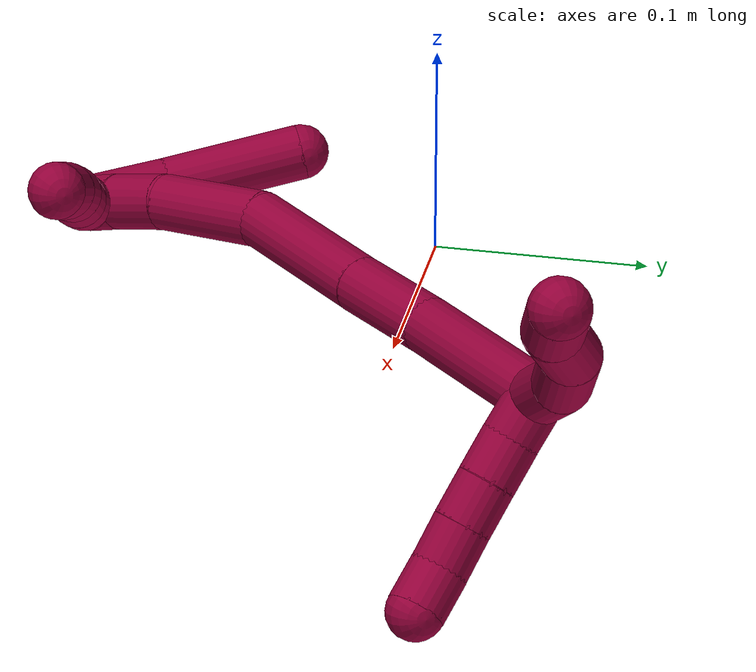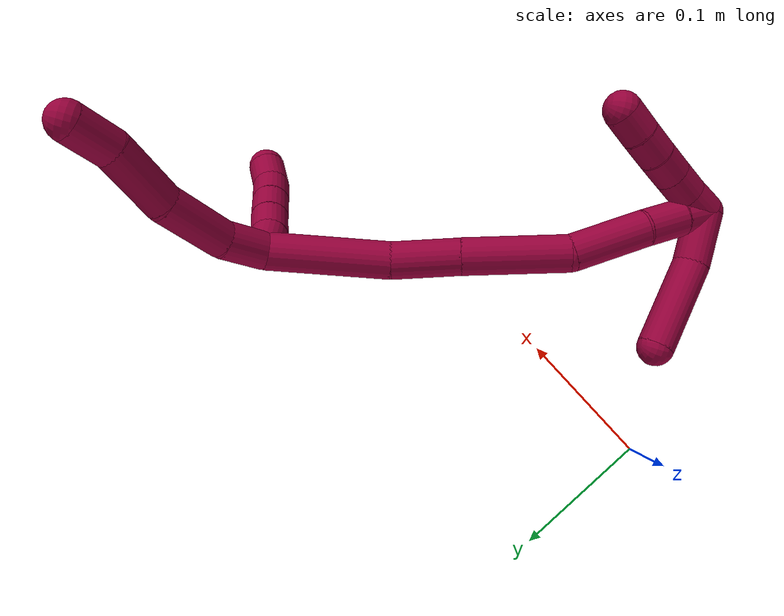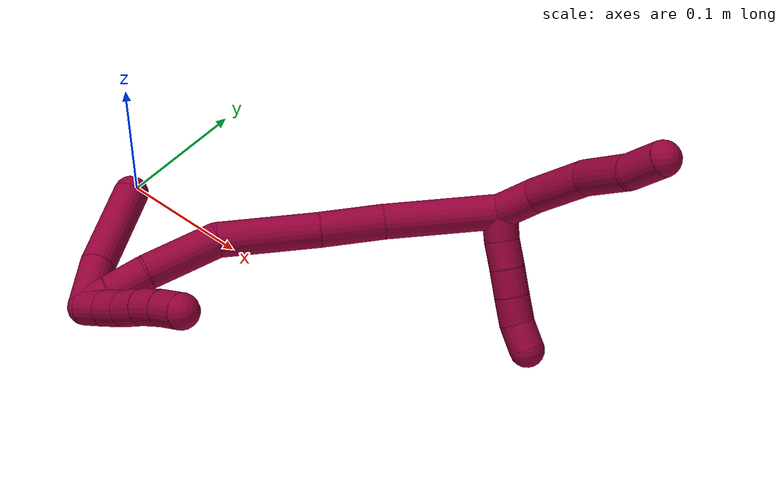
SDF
<sdf version="1.7">
 <world name="default">
  <model name="8">
   <static>0</static>
   <link name="8">
    <collision name="collision-cylinder-e_1_2_8">
     <pose>-0.003268 -0.005428 0.013873 0.372925 -0.215933 -0.04089</pose>
     <geometry><cylinder><radius>0.0125</radius><length>0.030503</length></cylinder></geometry>
     <surface>
      <friction><ode><mu>1.16</mu><mu2>1.16</mu2><slip1>0</slip1><slip2>0</slip2></ode></friction>
      <contact><ode><kp>1e+06</kp><kd>1</kd><max_vel>0</max_vel><min_depth>0.001</min_depth></ode></contact>
     </surface>
    </collision>
    <visual name="visual-cylinder-e_1_2_8">
     <pose>-0.003268 -0.005428 0.013873 0.372925 -0.215933 -0.04089</pose>
     <geometry><cylinder><radius>0.0125</radius><length>0.030503</length></cylinder></geometry>
     <material><ambient>0.584314 0 0.227451 1</ambient></material>
    </visual>
    <collision name="collision-cylinder-e_2_8_9">
     <pose>-0.007399 -0.023596 0.046958 0.585595 -0.03745 -0.011291</pose>
     <geometry><cylinder><radius>0.0125</radius><length>0.046137</length></cylinder></geometry>
     <surface>
      <friction><ode><mu>1.16</mu><mu2>1.16</mu2><slip1>0</slip1><slip2>0</slip2></ode></friction>
      <contact><ode><kp>1e+06</kp><kd>1</kd><max_vel>0</max_vel><min_depth>0.001</min_depth></ode></contact>
     </surface>
    </collision>
    <visual name="visual-cylinder-e_2_8_9">
     <pose>-0.007399 -0.023596 0.046958 0.585595 -0.03745 -0.011291</pose>
     <geometry><cylinder><radius>0.0125</radius><length>0.046137</length></cylinder></geometry>
     <material><ambient>0.584314 0 0.227451 1</ambient></material>
    </visual>
    <collision name="collision-cylinder-e_3_9_10">
     <pose>-0.00454 -0.050497 0.082648 0.709877 0.169699 0.063027</pose>
     <geometry><cylinder><radius>0.0125</radius><length>0.044087</length></cylinder></geometry>
     <surface>
      <friction><ode><mu>1.16</mu><mu2>1.16</mu2><slip1>0</slip1><slip2>0</slip2></ode></friction>
      <contact><ode><kp>1e+06</kp><kd>1</kd><max_vel>0</max_vel><min_depth>0.001</min_depth></ode></contact>
     </surface>
    </collision>
    <visual name="visual-cylinder-e_3_9_10">
     <pose>-0.00454 -0.050497 0.082648 0.709877 0.169699 0.063027</pose>
     <geometry><cylinder><radius>0.0125</radius><length>0.044087</length></cylinder></geometry>
     <material><ambient>0.584314 0 0.227451 1</ambient></material>
    </visual>
    <collision name="collision-cylinder-e_4_10_6">
     <pose>-0.001769 -0.07292 0.11117 0.601318 -0.065044 -0.020174</pose>
     <geometry><cylinder><radius>0.0125</radius><length>0.029274</length></cylinder></geometry>
     <surface>
      <friction><ode><mu>1.16</mu><mu2>1.16</mu2><slip1>0</slip1><slip2>0</slip2></ode></friction>
      <contact><ode><kp>1e+06</kp><kd>1</kd><max_vel>0</max_vel><min_depth>0.001</min_depth></ode></contact>
     </surface>
    </collision>
    <visual name="visual-cylinder-e_4_10_6">
     <pose>-0.001769 -0.07292 0.11117 0.601318 -0.065044 -0.020174</pose>
     <geometry><cylinder><radius>0.0125</radius><length>0.029274</length></cylinder></geometry>
     <material><ambient>0.584314 0 0.227451 1</ambient></material>
    </visual>
    <collision name="collision-cylinder-e_1_2_11">
     <pose>0.00905 0.004234 -0.000409 -1.66716 1.13141 -1.22046</pose>
     <geometry><cylinder><radius>0.0125</radius><length>0.02</length></cylinder></geometry>
     <surface>
      <friction><ode><mu>1.16</mu><mu2>1.16</mu2><slip1>0</slip1><slip2>0</slip2></ode></friction>
      <contact><ode><kp>1e+06</kp><kd>1</kd><max_vel>0</max_vel><min_depth>0.001</min_depth></ode></contact>
     </surface>
    </collision>
    <visual name="visual-cylinder-e_1_2_11">
     <pose>0.00905 0.004234 -0.000409 -1.66716 1.13141 -1.22046</pose>
     <geometry><cylinder><radius>0.0125</radius><length>0.02</length></cylinder></geometry>
     <material><ambient>0.584314 0 0.227451 1</ambient></material>
    </visual>
    <collision name="collision-cylinder-e_2_11_12">
     <pose>0.027305 0.012239 0.000213 -1.30365 1.16916 -0.935222</pose>
     <geometry><cylinder><radius>0.0125</radius><length>0.02</length></cylinder></geometry>
     <surface>
      <friction><ode><mu>1.16</mu><mu2>1.16</mu2><slip1>0</slip1><slip2>0</slip2></ode></friction>
      <contact><ode><kp>1e+06</kp><kd>1</kd><max_vel>0</max_vel><min_depth>0.001</min_depth></ode></contact>
     </surface>
    </collision>
    <visual name="visual-cylinder-e_2_11_12">
     <pose>0.027305 0.012239 0.000213 -1.30365 1.16916 -0.935222</pose>
     <geometry><cylinder><radius>0.0125</radius><length>0.02</length></cylinder></geometry>
     <material><ambient>0.584314 0 0.227451 1</ambient></material>
    </visual>
    <collision name="collision-cylinder-e_3_12_13">
     <pose>0.04564 0.020017 0.001987 -1.38774 1.15098 -0.989746</pose>
     <geometry><cylinder><radius>0.0125</radius><length>0.02</length></cylinder></geometry>
     <surface>
      <friction><ode><mu>1.16</mu><mu2>1.16</mu2><slip1>0</slip1><slip2>0</slip2></ode></friction>
      <contact><ode><kp>1e+06</kp><kd>1</kd><max_vel>0</max_vel><min_depth>0.001</min_depth></ode></contact>
     </surface>
    </collision>
    <visual name="visual-cylinder-e_3_12_13">
     <pose>0.04564 0.020017 0.001987 -1.38774 1.15098 -0.989746</pose>
     <geometry><cylinder><radius>0.0125</radius><length>0.02</length></cylinder></geometry>
     <material><ambient>0.584314 0 0.227451 1</ambient></material>
    </visual>
    <collision name="collision-cylinder-e_4_13_14">
     <pose>0.063793 0.028258 0.003568 -1.37518 1.12461 -0.955179</pose>
     <geometry><cylinder><radius>0.0125</radius><length>0.02</length></cylinder></geometry>
     <surface>
      <friction><ode><mu>1.16</mu><mu2>1.16</mu2><slip1>0</slip1><slip2>0</slip2></ode></friction>
      <contact><ode><kp>1e+06</kp><kd>1</kd><max_vel>0</max_vel><min_depth>0.001</min_depth></ode></contact>
     </surface>
    </collision>
    <visual name="visual-cylinder-e_4_13_14">
     <pose>0.063793 0.028258 0.003568 -1.37518 1.12461 -0.955179</pose>
     <geometry><cylinder><radius>0.0125</radius><length>0.02</length></cylinder></geometry>
     <material><ambient>0.584314 0 0.227451 1</ambient></material>
    </visual>
    <collision name="collision-cylinder-e_5_14_5">
     <pose>0.081982 0.035257 0.007287 -0.765258 1.15994 -0.515594</pose>
     <geometry><cylinder><radius>0.0125</radius><length>0.02</length></cylinder></geometry>
     <surface>
      <friction><ode><mu>1.16</mu><mu2>1.16</mu2><slip1>0</slip1><slip2>0</slip2></ode></friction>
      <contact><ode><kp>1e+06</kp><kd>1</kd><max_vel>0</max_vel><min_depth>0.001</min_depth></ode></contact>
     </surface>
    </collision>
    <visual name="visual-cylinder-e_5_14_5">
     <pose>0.081982 0.035257 0.007287 -0.765258 1.15994 -0.515594</pose>
     <geometry><cylinder><radius>0.0125</radius><length>0.02</length></cylinder></geometry>
     <material><ambient>0.584314 0 0.227451 1</ambient></material>
    </visual>
    <collision name="collision-cylinder-e_1_2_15">
     <pose>0.003518 -0.00941 -0.03942 2.90727 0.086582 0.70529</pose>
     <geometry><cylinder><radius>0.0125</radius><length>0.081361</length></cylinder></geometry>
     <surface>
      <friction><ode><mu>1.16</mu><mu2>1.16</mu2><slip1>0</slip1><slip2>0</slip2></ode></friction>
      <contact><ode><kp>1e+06</kp><kd>1</kd><max_vel>0</max_vel><min_depth>0.001</min_depth></ode></contact>
     </surface>
    </collision>
    <visual name="visual-cylinder-e_1_2_15">
     <pose>0.003518 -0.00941 -0.03942 2.90727 0.086582 0.70529</pose>
     <geometry><cylinder><radius>0.0125</radius><length>0.081361</length></cylinder></geometry>
     <material><ambient>0.584314 0 0.227451 1</ambient></material>
    </visual>
    <collision name="collision-cylinder-e_2_15_16">
     <pose>0.01076 -0.026777 -0.099987 2.78171 0.163378 0.845821</pose>
     <geometry><cylinder><radius>0.0125</radius><length>0.045796</length></cylinder></geometry>
     <surface>
      <friction><ode><mu>1.16</mu><mu2>1.16</mu2><slip1>0</slip1><slip2>0</slip2></ode></friction>
      <contact><ode><kp>1e+06</kp><kd>1</kd><max_vel>0</max_vel><min_depth>0.001</min_depth></ode></contact>
     </surface>
    </collision>
    <visual name="visual-cylinder-e_2_15_16">
     <pose>0.01076 -0.026777 -0.099987 2.78171 0.163378 0.845821</pose>
     <geometry><cylinder><radius>0.0125</radius><length>0.045796</length></cylinder></geometry>
     <material><ambient>0.584314 0 0.227451 1</ambient></material>
    </visual>
    <collision name="collision-cylinder-e_3_16_17">
     <pose>0.019243 -0.047178 -0.15426 2.78223 0.13366 0.706072</pose>
     <geometry><cylinder><radius>0.0125</radius><length>0.071413</length></cylinder></geometry>
     <surface>
      <friction><ode><mu>1.16</mu><mu2>1.16</mu2><slip1>0</slip1><slip2>0</slip2></ode></friction>
      <contact><ode><kp>1e+06</kp><kd>1</kd><max_vel>0</max_vel><min_depth>0.001</min_depth></ode></contact>
     </surface>
    </collision>
    <visual name="visual-cylinder-e_3_16_17">
     <pose>0.019243 -0.047178 -0.15426 2.78223 0.13366 0.706072</pose>
     <geometry><cylinder><radius>0.0125</radius><length>0.071413</length></cylinder></geometry>
     <material><ambient>0.584314 0 0.227451 1</ambient></material>
    </visual>
    <collision name="collision-cylinder-e_4_17_18">
     <pose>0.036221 -0.06791 -0.209522 2.78336 0.477176 1.86176</pose>
     <geometry><cylinder><radius>0.0125</radius><length>0.053214</length></cylinder></geometry>
     <surface>
      <friction><ode><mu>1.16</mu><mu2>1.16</mu2><slip1>0</slip1><slip2>0</slip2></ode></friction>
      <contact><ode><kp>1e+06</kp><kd>1</kd><max_vel>0</max_vel><min_depth>0.001</min_depth></ode></contact>
     </surface>
    </collision>
    <visual name="visual-cylinder-e_4_17_18">
     <pose>0.036221 -0.06791 -0.209522 2.78336 0.477176 1.86176</pose>
     <geometry><cylinder><radius>0.0125</radius><length>0.053214</length></cylinder></geometry>
     <material><ambient>0.584314 0 0.227451 1</ambient></material>
    </visual>
    <collision name="collision-cylinder-e_5_18_19">
     <pose>0.055388 -0.0784 -0.243703 2.96073 0.51599 2.47961</pose>
     <geometry><cylinder><radius>0.0125</radius><length>0.02816</length></cylinder></geometry>
     <surface>
      <friction><ode><mu>1.16</mu><mu2>1.16</mu2><slip1>0</slip1><slip2>0</slip2></ode></friction>
      <contact><ode><kp>1e+06</kp><kd>1</kd><max_vel>0</max_vel><min_depth>0.001</min_depth></ode></contact>
     </surface>
    </collision>
    <visual name="visual-cylinder-e_5_18_19">
     <pose>0.055388 -0.0784 -0.243703 2.96073 0.51599 2.47961</pose>
     <geometry><cylinder><radius>0.0125</radius><length>0.02816</length></cylinder></geometry>
     <material><ambient>0.584314 0 0.227451 1</ambient></material>
    </visual>
    <collision name="collision-cylinder-e_6_19_1">
     <pose>0.067202 -0.081456 -0.264476 3.04418 0.506801 2.7695</pose>
     <geometry><cylinder><radius>0.0125</radius><length>0.020057</length></cylinder></geometry>
     <surface>
      <friction><ode><mu>1.16</mu><mu2>1.16</mu2><slip1>0</slip1><slip2>0</slip2></ode></friction>
      <contact><ode><kp>1e+06</kp><kd>1</kd><max_vel>0</max_vel><min_depth>0.001</min_depth></ode></contact>
     </surface>
    </collision>
    <visual name="visual-cylinder-e_6_19_1">
     <pose>0.067202 -0.081456 -0.264476 3.04418 0.506801 2.7695</pose>
     <geometry><cylinder><radius>0.0125</radius><length>0.020057</length></cylinder></geometry>
     <material><ambient>0.584314 0 0.227451 1</ambient></material>
    </visual>
    <collision name="collision-cylinder-e_1_1_20">
     <pose>0.073889 -0.086247 -0.264193 0.412137 0.182907 0.038336</pose>
     <geometry><cylinder><radius>0.0125</radius><length>0.02</length></cylinder></geometry>
     <surface>
      <friction><ode><mu>1.16</mu><mu2>1.16</mu2><slip1>0</slip1><slip2>0</slip2></ode></friction>
      <contact><ode><kp>1e+06</kp><kd>1</kd><max_vel>0</max_vel><min_depth>0.001</min_depth></ode></contact>
     </surface>
    </collision>
    <visual name="visual-cylinder-e_1_1_20">
     <pose>0.073889 -0.086247 -0.264193 0.412137 0.182907 0.038336</pose>
     <geometry><cylinder><radius>0.0125</radius><length>0.02</length></cylinder></geometry>
     <material><ambient>0.584314 0 0.227451 1</ambient></material>
    </visual>
    <collision name="collision-cylinder-e_2_20_21">
     <pose>0.077452 -0.094723 -0.246443 0.478831 0.175289 0.042891</pose>
     <geometry><cylinder><radius>0.0125</radius><length>0.02</length></cylinder></geometry>
     <surface>
      <friction><ode><mu>1.16</mu><mu2>1.16</mu2><slip1>0</slip1><slip2>0</slip2></ode></friction>
      <contact><ode><kp>1e+06</kp><kd>1</kd><max_vel>0</max_vel><min_depth>0.001</min_depth></ode></contact>
     </surface>
    </collision>
    <visual name="visual-cylinder-e_2_20_21">
     <pose>0.077452 -0.094723 -0.246443 0.478831 0.175289 0.042891</pose>
     <geometry><cylinder><radius>0.0125</radius><length>0.02</length></cylinder></geometry>
     <material><ambient>0.584314 0 0.227451 1</ambient></material>
    </visual>
    <collision name="collision-cylinder-e_3_21_22">
     <pose>0.080362 -0.104184 -0.229079 0.518785 0.116874 0.031048</pose>
     <geometry><cylinder><radius>0.0125</radius><length>0.02</length></cylinder></geometry>
     <surface>
      <friction><ode><mu>1.16</mu><mu2>1.16</mu2><slip1>0</slip1><slip2>0</slip2></ode></friction>
      <contact><ode><kp>1e+06</kp><kd>1</kd><max_vel>0</max_vel><min_depth>0.001</min_depth></ode></contact>
     </surface>
    </collision>
    <visual name="visual-cylinder-e_3_21_22">
     <pose>0.080362 -0.104184 -0.229079 0.518785 0.116874 0.031048</pose>
     <geometry><cylinder><radius>0.0125</radius><length>0.02</length></cylinder></geometry>
     <material><ambient>0.584314 0 0.227451 1</ambient></material>
    </visual>
    <collision name="collision-cylinder-e_4_22_23">
     <pose>0.083461 -0.113741 -0.211805 0.49168 0.194555 0.048962</pose>
     <geometry><cylinder><radius>0.0125</radius><length>0.02</length></cylinder></geometry>
     <surface>
      <friction><ode><mu>1.16</mu><mu2>1.16</mu2><slip1>0</slip1><slip2>0</slip2></ode></friction>
      <contact><ode><kp>1e+06</kp><kd>1</kd><max_vel>0</max_vel><min_depth>0.001</min_depth></ode></contact>
     </surface>
    </collision>
    <visual name="visual-cylinder-e_4_22_23">
     <pose>0.083461 -0.113741 -0.211805 0.49168 0.194555 0.048962</pose>
     <geometry><cylinder><radius>0.0125</radius><length>0.02</length></cylinder></geometry>
     <material><ambient>0.584314 0 0.227451 1</ambient></material>
    </visual>
    <collision name="collision-cylinder-e_5_23_4">
     <pose>0.088048 -0.122708 -0.194544 0.466334 0.268546 0.06414</pose>
     <geometry><cylinder><radius>0.0125</radius><length>0.02</length></cylinder></geometry>
     <surface>
      <friction><ode><mu>1.16</mu><mu2>1.16</mu2><slip1>0</slip1><slip2>0</slip2></ode></friction>
      <contact><ode><kp>1e+06</kp><kd>1</kd><max_vel>0</max_vel><min_depth>0.001</min_depth></ode></contact>
     </surface>
    </collision>
    <visual name="visual-cylinder-e_5_23_4">
     <pose>0.088048 -0.122708 -0.194544 0.466334 0.268546 0.06414</pose>
     <geometry><cylinder><radius>0.0125</radius><length>0.02</length></cylinder></geometry>
     <material><ambient>0.584314 0 0.227451 1</ambient></material>
    </visual>
    <collision name="collision-cylinder-e_1_1_24">
     <pose>0.055043 -0.074573 -0.272846 -1.52474 -1.14399 1.10245</pose>
     <geometry><cylinder><radius>0.0125</radius><length>0.03741</length></cylinder></geometry>
     <surface>
      <friction><ode><mu>1.16</mu><mu2>1.16</mu2><slip1>0</slip1><slip2>0</slip2></ode></friction>
      <contact><ode><kp>1e+06</kp><kd>1</kd><max_vel>0</max_vel><min_depth>0.001</min_depth></ode></contact>
     </surface>
    </collision>
    <visual name="visual-cylinder-e_1_1_24">
     <pose>0.055043 -0.074573 -0.272846 -1.52474 -1.14399 1.10245</pose>
     <geometry><cylinder><radius>0.0125</radius><length>0.03741</length></cylinder></geometry>
     <material><ambient>0.584314 0 0.227451 1</ambient></material>
    </visual>
    <collision name="collision-cylinder-e_2_24_3">
     <pose>0.009336 -0.056522 -0.265392 -0.968161 -1.15913 0.662938</pose>
     <geometry><cylinder><radius>0.0125</radius><length>0.06259</length></cylinder></geometry>
     <surface>
      <friction><ode><mu>1.16</mu><mu2>1.16</mu2><slip1>0</slip1><slip2>0</slip2></ode></friction>
      <contact><ode><kp>1e+06</kp><kd>1</kd><max_vel>0</max_vel><min_depth>0.001</min_depth></ode></contact>
     </surface>
    </collision>
    <visual name="visual-cylinder-e_2_24_3">
     <pose>0.009336 -0.056522 -0.265392 -0.968161 -1.15913 0.662938</pose>
     <geometry><cylinder><radius>0.0125</radius><length>0.06259</length></cylinder></geometry>
     <material><ambient>0.584314 0 0.227451 1</ambient></material>
    </visual>
    <collision name="collision-sphere-3">
     <pose>-0.019345 -0.046206 -0.258294 0 -0 0</pose>
     <geometry><sphere><radius>0.0125</radius></sphere></geometry>
     <surface>
      <friction><ode><mu>1.16</mu><mu2>1.16</mu2><slip1>0</slip1><slip2>0</slip2></ode></friction>
      <contact><ode><kp>1e+06</kp><kd>1</kd><max_vel>0</max_vel><min_depth>0.001</min_depth></ode></contact>
     </surface>
    </collision>
    <visual name="visual-sphere-3">
     <pose>-0.019345 -0.046206 -0.258294 0 -0 0</pose>
     <geometry><sphere><radius>0.0125</radius></sphere></geometry>
     <material><ambient>0.584314 0 0.227451 1</ambient></material>
    </visual>
    <collision name="collision-sphere-24">
     <pose>0.038016 -0.066838 -0.272489 0 -0 0</pose>
     <geometry><sphere><radius>0.0125</radius></sphere></geometry>
     <surface>
      <friction><ode><mu>1.16</mu><mu2>1.16</mu2><slip1>0</slip1><slip2>0</slip2></ode></friction>
      <contact><ode><kp>1e+06</kp><kd>1</kd><max_vel>0</max_vel><min_depth>0.001</min_depth></ode></contact>
     </surface>
    </collision>
    <visual name="visual-sphere-24">
     <pose>0.038016 -0.066838 -0.272489 0 -0 0</pose>
     <geometry><sphere><radius>0.0125</radius></sphere></geometry>
     <material><ambient>0.584314 0 0.227451 1</ambient></material>
    </visual>
    <collision name="collision-sphere-4">
     <pose>0.090701 -0.127043 -0.185932 0 -0 0</pose>
     <geometry><sphere><radius>0.0125</radius></sphere></geometry>
     <surface>
      <friction><ode><mu>1.16</mu><mu2>1.16</mu2><slip1>0</slip1><slip2>0</slip2></ode></friction>
      <contact><ode><kp>1e+06</kp><kd>1</kd><max_vel>0</max_vel><min_depth>0.001</min_depth></ode></contact>
     </surface>
    </collision>
    <visual name="visual-sphere-4">
     <pose>0.090701 -0.127043 -0.185932 0 -0 0</pose>
     <geometry><sphere><radius>0.0125</radius></sphere></geometry>
     <material><ambient>0.584314 0 0.227451 1</ambient></material>
    </visual>
    <collision name="collision-sphere-23">
     <pose>0.085394 -0.118373 -0.203156 0 -0 0</pose>
     <geometry><sphere><radius>0.0125</radius></sphere></geometry>
     <surface>
      <friction><ode><mu>1.16</mu><mu2>1.16</mu2><slip1>0</slip1><slip2>0</slip2></ode></friction>
      <contact><ode><kp>1e+06</kp><kd>1</kd><max_vel>0</max_vel><min_depth>0.001</min_depth></ode></contact>
     </surface>
    </collision>
    <visual name="visual-sphere-23">
     <pose>0.085394 -0.118373 -0.203156 0 -0 0</pose>
     <geometry><sphere><radius>0.0125</radius></sphere></geometry>
     <material><ambient>0.584314 0 0.227451 1</ambient></material>
    </visual>
    <collision name="collision-sphere-22">
     <pose>0.081528 -0.109109 -0.220454 0 -0 0</pose>
     <geometry><sphere><radius>0.0125</radius></sphere></geometry>
     <surface>
      <friction><ode><mu>1.16</mu><mu2>1.16</mu2><slip1>0</slip1><slip2>0</slip2></ode></friction>
      <contact><ode><kp>1e+06</kp><kd>1</kd><max_vel>0</max_vel><min_depth>0.001</min_depth></ode></contact>
     </surface>
    </collision>
    <visual name="visual-sphere-22">
     <pose>0.081528 -0.109109 -0.220454 0 -0 0</pose>
     <geometry><sphere><radius>0.0125</radius></sphere></geometry>
     <material><ambient>0.584314 0 0.227451 1</ambient></material>
    </visual>
    <collision name="collision-sphere-21">
     <pose>0.079195 -0.09926 -0.237704 0 -0 0</pose>
     <geometry><sphere><radius>0.0125</radius></sphere></geometry>
     <surface>
      <friction><ode><mu>1.16</mu><mu2>1.16</mu2><slip1>0</slip1><slip2>0</slip2></ode></friction>
      <contact><ode><kp>1e+06</kp><kd>1</kd><max_vel>0</max_vel><min_depth>0.001</min_depth></ode></contact>
     </surface>
    </collision>
    <visual name="visual-sphere-21">
     <pose>0.079195 -0.09926 -0.237704 0 -0 0</pose>
     <geometry><sphere><radius>0.0125</radius></sphere></geometry>
     <material><ambient>0.584314 0 0.227451 1</ambient></material>
    </visual>
    <collision name="collision-sphere-20">
     <pose>0.075708 -0.090186 -0.255183 0 -0 0</pose>
     <geometry><sphere><radius>0.0125</radius></sphere></geometry>
     <surface>
      <friction><ode><mu>1.16</mu><mu2>1.16</mu2><slip1>0</slip1><slip2>0</slip2></ode></friction>
      <contact><ode><kp>1e+06</kp><kd>1</kd><max_vel>0</max_vel><min_depth>0.001</min_depth></ode></contact>
     </surface>
    </collision>
    <visual name="visual-sphere-20">
     <pose>0.075708 -0.090186 -0.255183 0 -0 0</pose>
     <geometry><sphere><radius>0.0125</radius></sphere></geometry>
     <material><ambient>0.584314 0 0.227451 1</ambient></material>
    </visual>
    <collision name="collision-sphere-11">
     <pose>0.0181 0.008468 -0.000819 0 -0 0</pose>
     <geometry><sphere><radius>0.0125</radius></sphere></geometry>
     <surface>
      <friction><ode><mu>1.16</mu><mu2>1.16</mu2><slip1>0</slip1><slip2>0</slip2></ode></friction>
      <contact><ode><kp>1e+06</kp><kd>1</kd><max_vel>0</max_vel><min_depth>0.001</min_depth></ode></contact>
     </surface>
    </collision>
    <visual name="visual-sphere-11">
     <pose>0.0181 0.008468 -0.000819 0 -0 0</pose>
     <geometry><sphere><radius>0.0125</radius></sphere></geometry>
     <material><ambient>0.584314 0 0.227451 1</ambient></material>
    </visual>
    <collision name="collision-sphere-6">
     <pose>-0.00272 -0.081183 0.123214 0 -0 0</pose>
     <geometry><sphere><radius>0.0125</radius></sphere></geometry>
     <surface>
      <friction><ode><mu>1.16</mu><mu2>1.16</mu2><slip1>0</slip1><slip2>0</slip2></ode></friction>
      <contact><ode><kp>1e+06</kp><kd>1</kd><max_vel>0</max_vel><min_depth>0.001</min_depth></ode></contact>
     </surface>
    </collision>
    <visual name="visual-sphere-6">
     <pose>-0.00272 -0.081183 0.123214 0 -0 0</pose>
     <geometry><sphere><radius>0.0125</radius></sphere></geometry>
     <material><ambient>0.584314 0 0.227451 1</ambient></material>
    </visual>
    <collision name="collision-sphere-10">
     <pose>-0.000817 -0.064658 0.099126 0 -0 0</pose>
     <geometry><sphere><radius>0.0125</radius></sphere></geometry>
     <surface>
      <friction><ode><mu>1.16</mu><mu2>1.16</mu2><slip1>0</slip1><slip2>0</slip2></ode></friction>
      <contact><ode><kp>1e+06</kp><kd>1</kd><max_vel>0</max_vel><min_depth>0.001</min_depth></ode></contact>
     </surface>
    </collision>
    <visual name="visual-sphere-10">
     <pose>-0.000817 -0.064658 0.099126 0 -0 0</pose>
     <geometry><sphere><radius>0.0125</radius></sphere></geometry>
     <material><ambient>0.584314 0 0.227451 1</ambient></material>
    </visual>
    <collision name="collision-sphere-9">
     <pose>-0.008263 -0.036337 0.066169 0 -0 0</pose>
     <geometry><sphere><radius>0.0125</radius></sphere></geometry>
     <surface>
      <friction><ode><mu>1.16</mu><mu2>1.16</mu2><slip1>0</slip1><slip2>0</slip2></ode></friction>
      <contact><ode><kp>1e+06</kp><kd>1</kd><max_vel>0</max_vel><min_depth>0.001</min_depth></ode></contact>
     </surface>
    </collision>
    <visual name="visual-sphere-9">
     <pose>-0.008263 -0.036337 0.066169 0 -0 0</pose>
     <geometry><sphere><radius>0.0125</radius></sphere></geometry>
     <material><ambient>0.584314 0 0.227451 1</ambient></material>
    </visual>
    <collision name="collision-sphere-2">
     <geometry><sphere><radius>0.0125</radius></sphere></geometry>
     <surface>
      <friction><ode><mu>1.16</mu><mu2>1.16</mu2><slip1>0</slip1><slip2>0</slip2></ode></friction>
      <contact><ode><kp>1e+06</kp><kd>1</kd><max_vel>0</max_vel><min_depth>0.001</min_depth></ode></contact>
     </surface>
    </collision>
    <visual name="visual-sphere-2">
     <geometry><sphere><radius>0.0125</radius></sphere></geometry>
     <material><ambient>0.584314 0 0.227451 1</ambient></material>
    </visual>
    <collision name="collision-sphere-19">
     <pose>0.062335 -0.080603 -0.25575 0 -0 0</pose>
     <geometry><sphere><radius>0.0125</radius></sphere></geometry>
     <surface>
      <friction><ode><mu>1.16</mu><mu2>1.16</mu2><slip1>0</slip1><slip2>0</slip2></ode></friction>
      <contact><ode><kp>1e+06</kp><kd>1</kd><max_vel>0</max_vel><min_depth>0.001</min_depth></ode></contact>
     </surface>
    </collision>
    <visual name="visual-sphere-19">
     <pose>0.062335 -0.080603 -0.25575 0 -0 0</pose>
     <geometry><sphere><radius>0.0125</radius></sphere></geometry>
     <material><ambient>0.584314 0 0.227451 1</ambient></material>
    </visual>
    <collision name="collision-sphere-8">
     <pose>-0.006535 -0.010855 0.027746 0 -0 0</pose>
     <geometry><sphere><radius>0.0125</radius></sphere></geometry>
     <surface>
      <friction><ode><mu>1.16</mu><mu2>1.16</mu2><slip1>0</slip1><slip2>0</slip2></ode></friction>
      <contact><ode><kp>1e+06</kp><kd>1</kd><max_vel>0</max_vel><min_depth>0.001</min_depth></ode></contact>
     </surface>
    </collision>
    <visual name="visual-sphere-8">
     <pose>-0.006535 -0.010855 0.027746 0 -0 0</pose>
     <geometry><sphere><radius>0.0125</radius></sphere></geometry>
     <material><ambient>0.584314 0 0.227451 1</ambient></material>
    </visual>
    <collision name="collision-sphere-12">
     <pose>0.036509 0.016009 0.001245 0 -0 0</pose>
     <geometry><sphere><radius>0.0125</radius></sphere></geometry>
     <surface>
      <friction><ode><mu>1.16</mu><mu2>1.16</mu2><slip1>0</slip1><slip2>0</slip2></ode></friction>
      <contact><ode><kp>1e+06</kp><kd>1</kd><max_vel>0</max_vel><min_depth>0.001</min_depth></ode></contact>
     </surface>
    </collision>
    <visual name="visual-sphere-12">
     <pose>0.036509 0.016009 0.001245 0 -0 0</pose>
     <geometry><sphere><radius>0.0125</radius></sphere></geometry>
     <material><ambient>0.584314 0 0.227451 1</ambient></material>
    </visual>
    <collision name="collision-sphere-13">
     <pose>0.054772 0.024025 0.002729 0 -0 0</pose>
     <geometry><sphere><radius>0.0125</radius></sphere></geometry>
     <surface>
      <friction><ode><mu>1.16</mu><mu2>1.16</mu2><slip1>0</slip1><slip2>0</slip2></ode></friction>
      <contact><ode><kp>1e+06</kp><kd>1</kd><max_vel>0</max_vel><min_depth>0.001</min_depth></ode></contact>
     </surface>
    </collision>
    <visual name="visual-sphere-13">
     <pose>0.054772 0.024025 0.002729 0 -0 0</pose>
     <geometry><sphere><radius>0.0125</radius></sphere></geometry>
     <material><ambient>0.584314 0 0.227451 1</ambient></material>
    </visual>
    <collision name="collision-sphere-14">
     <pose>0.072814 0.032491 0.004407 0 -0 0</pose>
     <geometry><sphere><radius>0.0125</radius></sphere></geometry>
     <surface>
      <friction><ode><mu>1.16</mu><mu2>1.16</mu2><slip1>0</slip1><slip2>0</slip2></ode></friction>
      <contact><ode><kp>1e+06</kp><kd>1</kd><max_vel>0</max_vel><min_depth>0.001</min_depth></ode></contact>
     </surface>
    </collision>
    <visual name="visual-sphere-14">
     <pose>0.072814 0.032491 0.004407 0 -0 0</pose>
     <geometry><sphere><radius>0.0125</radius></sphere></geometry>
     <material><ambient>0.584314 0 0.227451 1</ambient></material>
    </visual>
    <collision name="collision-sphere-5">
     <pose>0.09115 0.038024 0.010168 0 -0 0</pose>
     <geometry><sphere><radius>0.0125</radius></sphere></geometry>
     <surface>
      <friction><ode><mu>1.16</mu><mu2>1.16</mu2><slip1>0</slip1><slip2>0</slip2></ode></friction>
      <contact><ode><kp>1e+06</kp><kd>1</kd><max_vel>0</max_vel><min_depth>0.001</min_depth></ode></contact>
     </surface>
    </collision>
    <visual name="visual-sphere-5">
     <pose>0.09115 0.038024 0.010168 0 -0 0</pose>
     <geometry><sphere><radius>0.0125</radius></sphere></geometry>
     <material><ambient>0.584314 0 0.227451 1</ambient></material>
    </visual>
    <collision name="collision-sphere-15">
     <pose>0.007036 -0.01882 -0.078841 0 -0 0</pose>
     <geometry><sphere><radius>0.0125</radius></sphere></geometry>
     <surface>
      <friction><ode><mu>1.16</mu><mu2>1.16</mu2><slip1>0</slip1><slip2>0</slip2></ode></friction>
      <contact><ode><kp>1e+06</kp><kd>1</kd><max_vel>0</max_vel><min_depth>0.001</min_depth></ode></contact>
     </surface>
    </collision>
    <visual name="visual-sphere-15">
     <pose>0.007036 -0.01882 -0.078841 0 -0 0</pose>
     <geometry><sphere><radius>0.0125</radius></sphere></geometry>
     <material><ambient>0.584314 0 0.227451 1</ambient></material>
    </visual>
    <collision name="collision-sphere-16">
     <pose>0.014484 -0.034733 -0.121132 0 -0 0</pose>
     <geometry><sphere><radius>0.0125</radius></sphere></geometry>
     <surface>
      <friction><ode><mu>1.16</mu><mu2>1.16</mu2><slip1>0</slip1><slip2>0</slip2></ode></friction>
      <contact><ode><kp>1e+06</kp><kd>1</kd><max_vel>0</max_vel><min_depth>0.001</min_depth></ode></contact>
     </surface>
    </collision>
    <visual name="visual-sphere-16">
     <pose>0.014484 -0.034733 -0.121132 0 -0 0</pose>
     <geometry><sphere><radius>0.0125</radius></sphere></geometry>
     <material><ambient>0.584314 0 0.227451 1</ambient></material>
    </visual>
    <collision name="collision-sphere-17">
     <pose>0.024001 -0.059624 -0.187387 0 -0 0</pose>
     <geometry><sphere><radius>0.0125</radius></sphere></geometry>
     <surface>
      <friction><ode><mu>1.16</mu><mu2>1.16</mu2><slip1>0</slip1><slip2>0</slip2></ode></friction>
      <contact><ode><kp>1e+06</kp><kd>1</kd><max_vel>0</max_vel><min_depth>0.001</min_depth></ode></contact>
     </surface>
    </collision>
    <visual name="visual-sphere-17">
     <pose>0.024001 -0.059624 -0.187387 0 -0 0</pose>
     <geometry><sphere><radius>0.0125</radius></sphere></geometry>
     <material><ambient>0.584314 0 0.227451 1</ambient></material>
    </visual>
    <collision name="collision-sphere-18">
     <pose>0.048441 -0.076197 -0.231656 0 -0 0</pose>
     <geometry><sphere><radius>0.0125</radius></sphere></geometry>
     <surface>
      <friction><ode><mu>1.16</mu><mu2>1.16</mu2><slip1>0</slip1><slip2>0</slip2></ode></friction>
      <contact><ode><kp>1e+06</kp><kd>1</kd><max_vel>0</max_vel><min_depth>0.001</min_depth></ode></contact>
     </surface>
    </collision>
    <visual name="visual-sphere-18">
     <pose>0.048441 -0.076197 -0.231656 0 -0 0</pose>
     <geometry><sphere><radius>0.0125</radius></sphere></geometry>
     <material><ambient>0.584314 0 0.227451 1</ambient></material>
    </visual>
    <collision name="collision-sphere-1">
     <pose>0.07207 -0.082309 -0.273202 0 -0 0</pose>
     <geometry><sphere><radius>0.0125</radius></sphere></geometry>
     <surface>
      <friction><ode><mu>1.16</mu><mu2>1.16</mu2><slip1>0</slip1><slip2>0</slip2></ode></friction>
      <contact><ode><kp>1e+06</kp><kd>1</kd><max_vel>0</max_vel><min_depth>0.001</min_depth></ode></contact>
     </surface>
    </collision>
    <visual name="visual-sphere-1">
     <pose>0.07207 -0.082309 -0.273202 0 -0 0</pose>
     <geometry><sphere><radius>0.0125</radius></sphere></geometry>
     <material><ambient>0.584314 0 0.227451 1</ambient></material>
    </visual>
    <inertial>
     <pose>0.028744 -0.044254 -0.10949 0 -0 0</pose>
     <mass>0.75</mass>
     <inertia><ixx>0.00019</ixx><ixy>0</ixy><ixz>0</ixz><iyy>7.6e-05</iyy><iyz>0</iyz><izz>3.2e-05</izz></inertia>
    </inertial>
   </link>
   <pose>0.272565 0.093208 0.083176 -1.30312 0.470786 -0.877841</pose>
  </model>
 </world>
</sdf>
